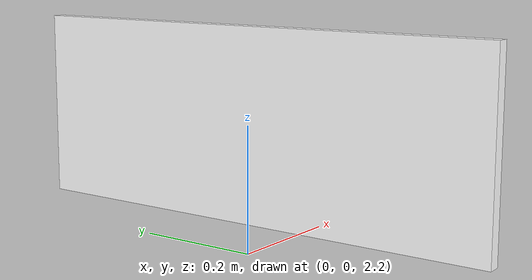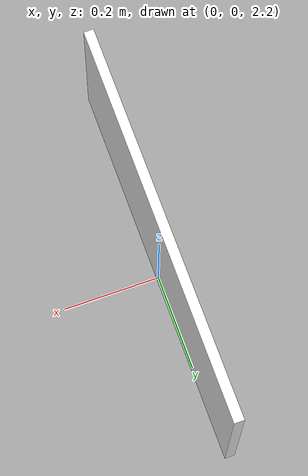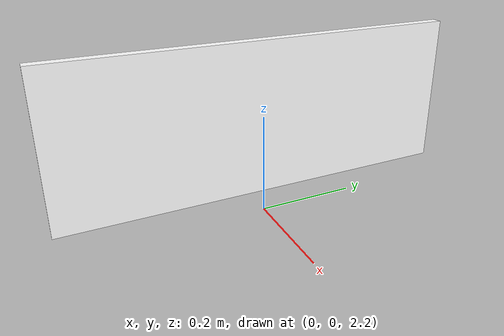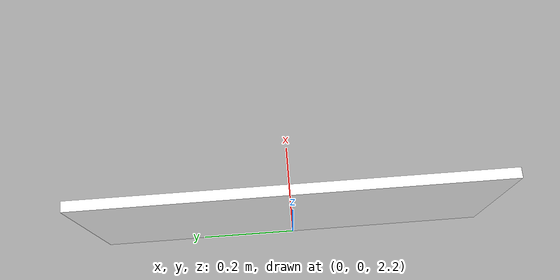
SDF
<?xml version="1.0" ?>
<sdf version="1.8">
  <model name="sign">
    <static>true</static>
    <link name="link">
      <visual name="plate">
        <pose>0 0 2.4 0 0 0</pose>
        <geometry><box><size>0.02 0.80 0.30</size></box></geometry>
        <material>
          <ambient>1 1 1 1</ambient>
          <diffuse>1 1 1 1</diffuse>
          <specular>0.05 0.05 0.05 1</specular>
          <pbr>
            <metal>
              <albedo_map>model://sign/materials/textures/sign_exit.png</albedo_map>
              <metalness>0.0</metalness>
              <roughness>0.9</roughness>
            </metal>
          </pbr>
        </material>
      </visual>
    </link>
  </model>
</sdf>
